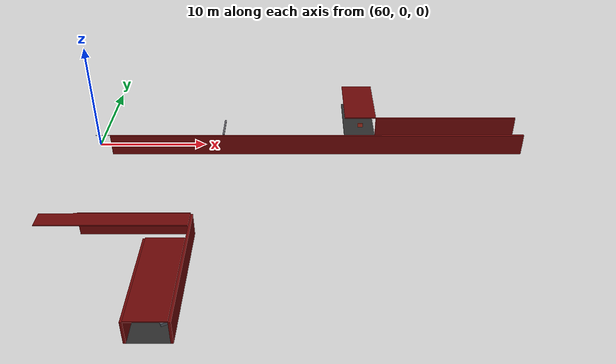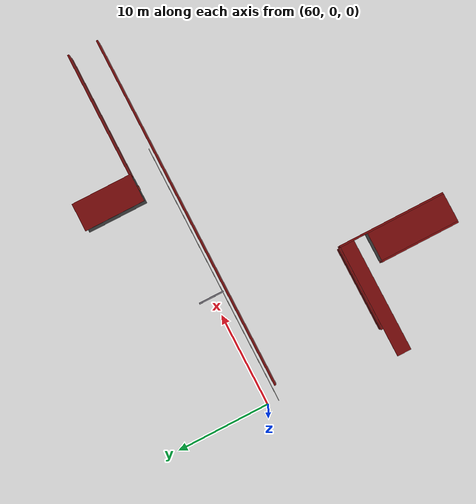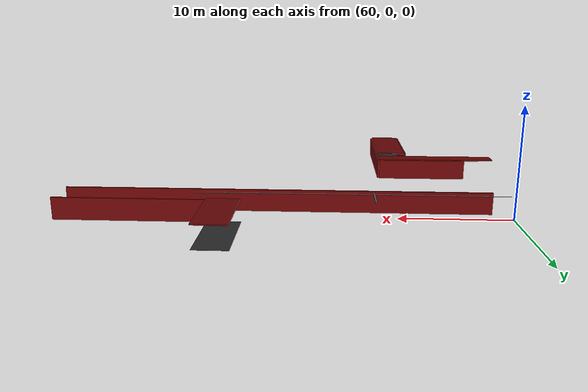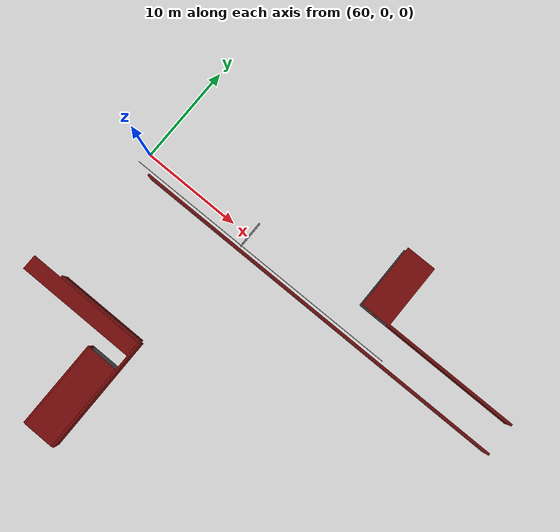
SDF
<sdf version="1.6">
 <world name="connected_branch_corridor_world">
  <include><uri>model://sun</uri></include>
  <model name="corridor_floor_01">
   <static>true</static>
   <pose>69 -20.75 0.01 0 0 0</pose>
   <link name="link">
    <visual name="visual">
     <geometry><box><size>3 8.5 0.02</size></box></geometry>
     <material><ambient>0.11 0.11 0.11 1</ambient><diffuse>0.18 0.18 0.18 1</diffuse></material>
    </visual>
   </link>
  </model>
  <model name="corridor_ceiling_01">
   <static>true</static>
   <pose>69 -20.75 2.05 0 0 0</pose>
   <link name="link">
    <collision name="collision"><geometry><box><size>3 8.5 0.1</size></box></geometry></collision>
    <visual name="visual">
     <geometry><box><size>3 8.5 0.1</size></box></geometry>
     <material><ambient>0.25 0.015 0.015 1</ambient><diffuse>0.43 0.025 0.025 1</diffuse></material>
    </visual>
   </link>
  </model>
  <model name="corridor_ceiling_03">
   <static>true</static>
   <pose>64.5 -14.25 2.05 0 0 0</pose>
   <link name="link">
    <collision name="collision"><geometry><box><size>12 1.5 0.1</size></box></geometry></collision>
    <visual name="visual">
     <geometry><box><size>12 1.5 0.1</size></box></geometry>
     <material><ambient>0.25 0.015 0.015 1</ambient><diffuse>0.43 0.025 0.025 1</diffuse></material>
    </visual>
   </link>
  </model>
  <model name="corridor_floor_08">
   <static>true</static>
   <pose>85 4.75 0.01 0 0 0</pose>
   <link name="link">
    <visual name="visual">
     <geometry><box><size>3 6.5 0.02</size></box></geometry>
     <material><ambient>0.11 0.11 0.11 1</ambient><diffuse>0.18 0.18 0.18 1</diffuse></material>
    </visual>
   </link>
  </model>
  <model name="corridor_ceiling_08">
   <static>true</static>
   <pose>85 4.75 2.05 0 0 0</pose>
   <link name="link">
    <collision name="collision"><geometry><box><size>3 6.5 0.1</size></box></geometry></collision>
    <visual name="visual">
     <geometry><box><size>3 6.5 0.1</size></box></geometry>
     <material><ambient>0.25 0.015 0.015 1</ambient><diffuse>0.43 0.025 0.025 1</diffuse></material>
    </visual>
   </link>
  </model>
  <model name="wall_02_north">
   <static>true</static>
   <pose>66 -13.4 1 0 0 0</pose>
   <link name="link">
    <collision name="collision"><geometry><box><size>9 0.2 2</size></box></geometry></collision>
    <visual name="visual">
     <geometry><box><size>9 0.2 2</size></box></geometry>
     <material><ambient>0.25 0.015 0.015 1</ambient><diffuse>0.43 0.025 0.025 1</diffuse></material>
    </visual>
   </link>
  </model>
  <model name="wall_04_south">
   <static>true</static>
   <pose>80.75 -1.6 1 0 0 0</pose>
   <link name="link">
    <collision name="collision"><geometry><box><size>38.5 0.2 2</size></box></geometry></collision>
    <visual name="visual">
     <geometry><box><size>38.5 0.2 2</size></box></geometry>
     <material><ambient>0.25 0.015 0.015 1</ambient><diffuse>0.43 0.025 0.025 1</diffuse></material>
    </visual>
   </link>
  </model>
  <model name="wall_07_north">
   <static>true</static>
   <pose>93.25 1.6 1 0 0 0</pose>
   <link name="link">
    <collision name="collision"><geometry><box><size>13.5 0.2 2</size></box></geometry></collision>
    <visual name="visual">
     <geometry><box><size>13.5 0.2 2</size></box></geometry>
     <material><ambient>0.25 0.015 0.015 1</ambient><diffuse>0.43 0.025 0.025 1</diffuse></material>
    </visual>
   </link>
  </model>
  <model name="wall_14_west">
   <static>true</static>
   <pose>67.4 -20.75 1 0 0 0</pose>
   <link name="link">
    <collision name="collision"><geometry><box><size>0.2 8.5 2</size></box></geometry></collision>
    <visual name="visual">
     <geometry><box><size>0.2 8.5 2</size></box></geometry>
     <material><ambient>0.25 0.015 0.015 1</ambient><diffuse>0.43 0.025 0.025 1</diffuse></material>
    </visual>
   </link>
  </model>
  <model name="wall_15_east">
   <static>true</static>
   <pose>70.6 -19.25 1 0 0 0</pose>
   <link name="link">
    <collision name="collision"><geometry><box><size>0.2 11.5 2</size></box></geometry></collision>
    <visual name="visual">
     <geometry><box><size>0.2 11.5 2</size></box></geometry>
     <material><ambient>0.25 0.015 0.015 1</ambient><diffuse>0.43 0.025 0.025 1</diffuse></material>
    </visual>
   </link>
  </model>
  <model name="feature_barrel_right_branch_02">
   <static>true</static>
   <pose>68.25 -19.30 0.28 0 0 0</pose>
   <link name="link">
    <collision name="collision">
     <geometry><cylinder><radius>0.22</radius><length>0.56</length></cylinder></geometry>
    </collision>
    <visual name="visual">
     <geometry><cylinder><radius>0.22</radius><length>0.56</length></cylinder></geometry>
     <material><ambient>0.30 0.30 0.26 1</ambient><diffuse>0.50 0.50 0.42 1</diffuse></material>
    </visual>
   </link>
  </model>
  <model name="feature_low_block_right_deadend_03">
   <static>true</static>
   <pose>69.80 -23.20 0.14 0 0 0.5</pose>
   <link name="link">
    <collision name="collision"><geometry><box><size>0.65 0.38 0.28</size></box></geometry></collision>
    <visual name="visual">
     <geometry><box><size>0.65 0.38 0.28</size></box></geometry>
     <material><ambient>0.24 0.25 0.27 1</ambient><diffuse>0.38 0.40 0.44 1</diffuse></material>
    </visual>
   </link>
  </model>
  <model name="feature_cable_main_x_02">
   <static>true</static>
   <pose>74.0 -1.22 1.78 0 1.5708 0</pose>
   <link name="link">
    <collision name="collision">
     <geometry><cylinder><radius>0.025</radius><length>28.0</length></cylinder></geometry>
    </collision>
    <visual name="visual">
     <geometry><cylinder><radius>0.025</radius><length>28.0</length></cylinder></geometry>
     <material><ambient>0.02 0.02 0.018 1</ambient><diffuse>0.05 0.05 0.04 1</diffuse></material>
    </visual>
   </link>
  </model>
  <model name="feature_cable_right_branch_x_02">
   <static>true</static>
   <pose>64.50 -14.10 1.80 0 1.5708 0</pose>
   <link name="link">
    <collision name="collision">
     <geometry><cylinder><radius>0.025</radius><length>9.5</length></cylinder></geometry>
    </collision>
    <visual name="visual">
     <geometry><cylinder><radius>0.025</radius><length>9.5</length></cylinder></geometry>
     <material><ambient>0.02 0.02 0.02 1</ambient><diffuse>0.05 0.05 0.045 1</diffuse></material>
    </visual>
   </link>
  </model>
  <model name="feature_cable_right_deadend_y_03">
   <static>true</static>
   <pose>70.05 -20.80 1.74 1.5708 0 0</pose>
   <link name="link">
    <collision name="collision">
     <geometry><cylinder><radius>0.025</radius><length>7.2</length></cylinder></geometry>
    </collision>
    <visual name="visual">
     <geometry><cylinder><radius>0.025</radius><length>7.2</length></cylinder></geometry>
     <material><ambient>0.025 0.02 0.018 1</ambient><diffuse>0.055 0.045 0.04 1</diffuse></material>
    </visual>
   </link>
  </model>
  <model name="feature_crossbeam_main_03">
   <static>true</static>
   <pose>72 0 1.88 0 0 0</pose>
   <link name="link">
    <collision name="collision"><geometry><box><size>0.16 2.65 0.12</size></box></geometry></collision>
    <visual name="visual">
     <geometry><box><size>0.16 2.65 0.12</size></box></geometry>
     <material><ambient>0.25 0.24 0.26 1</ambient><diffuse>0.38 0.37 0.40 1</diffuse></material>
    </visual>
   </link>
  </model>
  <model name="feature_service_box_branch_01">
   <static>true</static>
   <pose>85.0 1.44 1.30 0 0 0</pose>
   <link name="link">
    <collision name="collision"><geometry><box><size>0.50 0.10 0.38</size></box></geometry></collision>
    <visual name="visual">
     <geometry><box><size>0.50 0.10 0.38</size></box></geometry>
     <material><ambient>0.35 0.10 0.08 1</ambient><diffuse>0.65 0.18 0.12 1</diffuse></material>
    </visual>
   </link>
  </model>
 </world>
</sdf>
